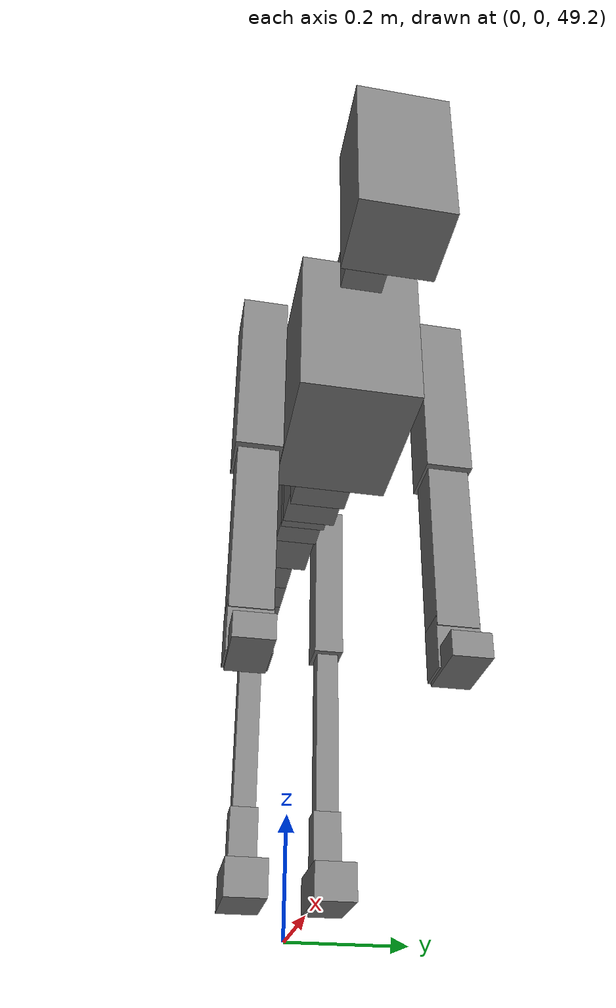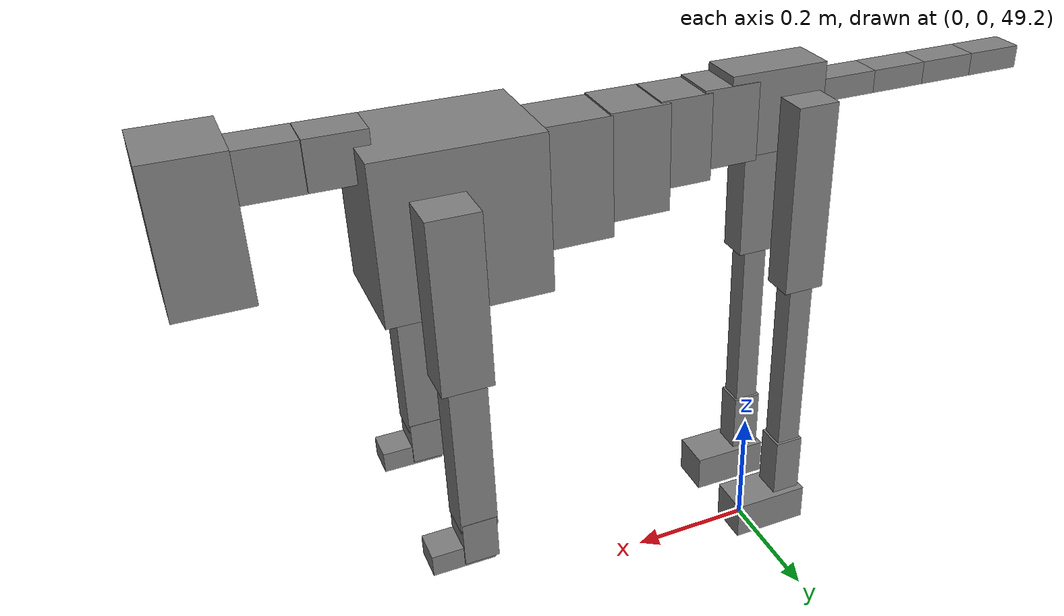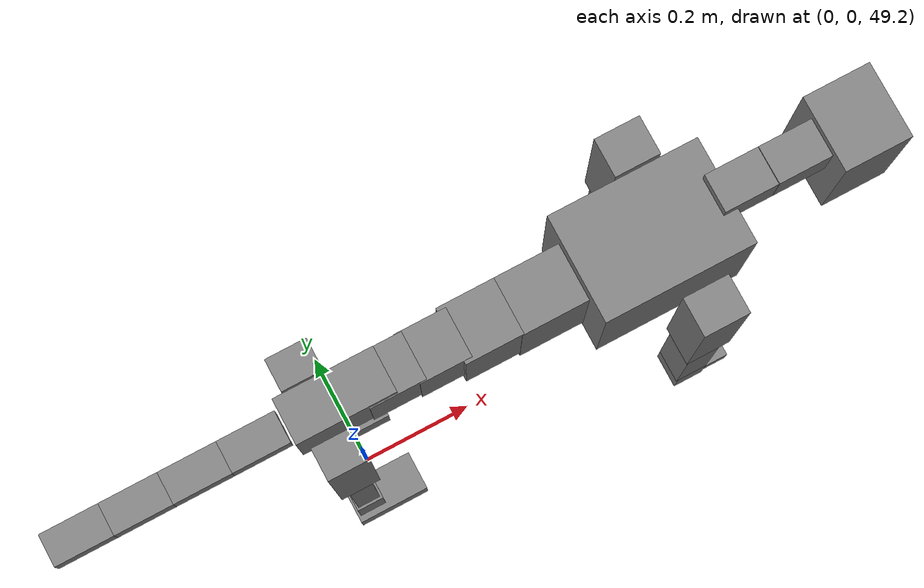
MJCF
<mujoco model="dog">

    <default>
        <joint armature="0.02" stiffness="1" damping="0.2" limited="true"/>
        <geom condim="3" friction="1 0.05 0.05" margin="0.01"/>
        <motor ctrllimited="true" ctrlrange="-1.0 1.0" forcelimited="true" gear="50"/>
    </default>

    <compiler inertiafromgeom="true" angle="radian"/>

    <option timestep="0.016" iterations="50" tolerance="1e-10" solver="Newton" jacobian="dense" cone="pyramidal"/>

    <size nconmax="20000" njmax="60000" nstack="5000000"/>
    <visual>
        <map force="0.1" zfar="30"/>
        <rgba haze="0.15 0.25 0.35 1"/>
        <quality shadowsize="2048"/>
        <global offwidth="800" offheight="800"/>
    </visual>

    <asset>
        <texture type="skybox" builtin="gradient" rgb1="0.3 0.5 0.7" rgb2="0 0 0" width="512" height="512"/>
        <texture name="texplane" type="2d" builtin="checker" rgb1=".2 .3 .4" rgb2=".1 0.15 0.2" width="512" height="512"
                 mark="cross" markrgb=".8 .8 .8"/>
        <texture name="texgeom" type="cube" builtin="flat" mark="cross" width="127" height="1278" rgb1="0.8 0.6 0.4"
                 rgb2="0.8 0.6 0.4" markrgb="1 1 1" random="0.01"/>

        <material name="matplane" reflectance="0.3" texture="texplane" texrepeat="1 1" texuniform="true"/>
        <material name="matgeom" texture="texgeom" texuniform="true" rgba="0.8 0.6 .4 1"/>
    </asset>

    <worldbody>
        <geom name="floor" pos="0 0 0" size="0 0 .25" type="plane" material="matplane" condim="3"/>

        <light directional="false" diffuse=".2 .2 .2" specular="0 0 0" pos="0 0 5" dir="0 0 -1" castshadow="false"/>
        <light mode="targetbodycom" target="torso" directional="false" diffuse=".8 .8 .8" specular="0.3 0.3 0.3"
               pos="0 0 4.0" dir="0 0 -1"/>

        <body name="root" pos="0 0 50">
            <freejoint name="root_1"/>
            <geom type="box" pos="0 0 -0.02" size="0.0774  0.0358  0.063" density="2030"/>

            <body name="spine1" pos="0.054 0 0">
                <joint name="spine1_y" axis="0 1 0" range="0 0.7" limited="true"/>
                <geom type="box" pos="0.02375 0 -0.03" size="0.04375  0.0375  0.05985" density="2030"/>

                <body name="spine2" pos="0.0612 0 0">
                    <joint name="spine2_y" axis="0 1 0" range="-0.15 0.15" limited="true"/>
                    <geom type="box" pos="0.03555  0  -0.04" size="0.04055  0.039  0.06615" density="2030"/>

                    <body name="spine3" pos="0.0730 0 0">
                        <joint name="spine3_y" axis="0 1 0" range="-0.15 0.15" limited="true"/>
                        <geom type="box" pos="0.03555  0  -0.057" size="0.04555  0.0445  0.081" density="2030"/>

                        <body name="spine4" pos="0.0780 0 0">
                            <joint name="spine4_y" axis="0 1 0" range="-0.15 0.15" limited="true"/>
                            <geom type="box" pos="0.05265  0  -0.07" size="0.05265  0.045  0.09135" density="2030"/>

                            <body name="torso" pos="0.1082 0 0">
                                <joint name="torso_y" axis="0 1 0" range="-0.15 0.15" limited="true"/>
                                <geom type="box" pos="0.11925  0  -0.085" size="0.11925  0.085  0.11745"
                                      density="2030"/>

                                <body name="neck1" pos="0.2160  0   0.0180">
                                    <joint name="neck1_y" axis="0 1 0" range="-1.2  -1" limited="true"/>
                                    <geom type="box" pos="0.0423  0  0" size="0.0423  0.03  0.036" density="2325"/>

                                    <body name="neck2" pos="0.0853  0  0">
                                        <joint name="neck2_y" axis="0 1 0" range="0.1  0" limited="true"/>
                                        <geom type="box" pos="0.0423  0  0" size="0.0423  0.03  0.036" density="2325"/>

                                        <body name="head" pos="0.0853  0  0">
                                            <joint name="head_y" axis="0 1 0" range="-0.3  -0.2" limited="true"/>
                                            <geom type="box" pos="0.0531  0  -0.055" size="0.0531  0.06  0.1044"
                                                  density="4030"/>

                                        </body>
                                    </body>
                                </body>

                                <body name="front_shoulder" pos="0.156  0   -0.0480">
                                    <joint name="front_shoulder_y" axis="0 1 0" range="-1 1.5" limited="true"/>
                                    <geom type="box" pos="0 0.13 -0.1013" size="0.0369  0.0315  0.1279" density="1158"/>
                                    <geom type="box" pos="0 -0.13 -0.1013" size="0.0369  0.0315  0.1279"
                                          density="1158"/>

                                    <body name="front_elbow" pos="0  0  -0.2025">
                                        <joint name="front_elbow_y" axis="0 1 0" range="-2 0" limited="true"/>
                                        <geom type="box" pos="0 0.13 -0.1329" size="0.0272  0.0278  0.1329"
                                              density="1081"/>
                                        <geom type="box" pos="0 -0.13 -0.1329" size="0.0272  0.0278  0.1329"
                                              density="1081"/>

                                        <body name="front_wrist" pos="0  0  -0.2659">
                                            <joint name="front_wrist_y" axis="0 1 0" range="-0.2 0" limited="true"/>
                                            <geom type="box" pos="0 0.13 -0.0220" size="0.0256  0.0285  0.0352"
                                                  density="1664"/>
                                            <geom type="box" pos="0 -0.13 -0.0220" size="0.0256  0.0285  0.0352"
                                                  density="1664"/>

                                            <body name="front_finger_end" pos="0  0  -0.0440">
                                                <joint name="front_finger_y" axis="0 1 0" range="-0.4 1"
                                                       limited="true"/>
                                                <geom type="box" pos="0.0256  0.13  -0.0018"
                                                      size="0.0470  0.0256  0.0168" density="1515"/>
                                                <geom type="box" pos="0.0256  -0.13  -0.0018"
                                                      size="0.0470  0.0256  0.0168" density="1515"/>

                                            </body>

                                        </body>
                                    </body>
                                </body>

                            </body>
                        </body>
                    </body>
                </body>
            </body>

            <body name="back_hip" pos="-0.03 0 -0.018">
                <joint name="back_hip_y" axis="0 1 0" range="-1.5 0.3" limited="true"/>
                <geom type="box" pos="0 0.07 -0.1274" size="0.0326  0.0256  0.1502" density="1154"/>
                <geom type="box" pos="0 -0.07 -0.1274" size="0.0326  0.0256  0.1502" density="1154"/>

                <body name="back_knee" pos="0  0  -0.2548">
                    <joint name="back_knee_y" axis="0 1 0" range="0 2.8" limited="true"/>
                    <geom type="box" pos="0 0.07 -0.1631" size="0.0196  0.0193  0.1786" density="1227"/>
                    <geom type="box" pos="0 -0.07 -0.1631" size="0.0196  0.0193  0.1786" density="1227"/>

                    <body name="back_ankle" pos="0  0  -0.3262">
                        <joint name="back_ankle_y" axis="0 1 0" range="-2.2 0" limited="true"/>
                        <geom type="box" pos="0 0.07 -0.0523" size="0.0235  0.0235  0.0635" density="1284"/>
                        <geom type="box" pos="0 -0.07 -0.0523" size="0.0235  0.0235  0.0635" density="1284"/>

                        <body name="back_toe_end" pos="0  0  -0.1045">
                            <joint name="back_toe_y" axis="0 1 0" range="-0.4 1" limited="true"/>
                            <geom type="box" pos="0.0342  0.07  -0.0156" size="0.0628  0.0342  0.0306" density="1515"/>
                            <geom type="box" pos="0.0342  -0.07  -0.0156" size="0.0628  0.0342  0.0306" density="1515"/>

                        </body>
                    </body>
                </body>
            </body>

            <body name="tail1" pos="-0.074 0 -0.006">
                <joint name="tail1_y" axis="0 1 0" range="-0.2 0.2" limited="true"/>
                <geom type="box" pos="-0.0536  0  0" size="0.045  0.025  0.0175" density="1587"/>

                <body name="tail2" pos="-0.09 0 0">
                    <joint name="tail2_y" axis="0 1 0" range="-0.2 0.2" limited="true"/>
                    <geom type="box" pos="-0.0536  0  0" size="0.045  0.025  0.0175" density="1587"/>

                    <body name="tail3" pos="-0.09 0 0">
                        <joint name="tail3_y" axis="0 1 0" range="-0.2 0.2" limited="true"/>
                        <geom type="box" pos="-0.0536  0  0" size="0.045  0.025  0.0175" density="1587"/>

                        <body name="tail4" pos="-0.09 0 0">
                            <joint name="tail4_y" axis="0 1 0" range="-0.2 0.2" limited="true"/>
                            <geom type="box" pos="-0.0536  0  0" size="0.045  0.025  0.0175" density="1587"/>

                        </body>
                    </body>
                </body>
            </body>
        </body>
    </worldbody>

    <actuator>
        <motor joint="spine1_y" forcerange="-150 150     "/>
        <motor joint="spine2_y" forcerange="-150 150     "/>
        <motor joint="spine3_y" forcerange="-150 150     "/>
        <motor joint="spine4_y" forcerange="-150 150     "/>
        <motor joint="torso_y" forcerange="-150 150     "/>
        <motor joint="neck1_y" forcerange="-100 100       "/>
        <motor joint="neck2_y" forcerange="-100 100       "/>
        <motor joint="head_y" forcerange="-150 150       "/>
        <motor joint="front_shoulder_y" forcerange="-194.32 116.01"/>
        <motor joint="front_elbow_y" forcerange="-104.16 198.25"/>
        <motor joint="front_wrist_y" forcerange="-97.83 129.98"/>
        <motor joint="front_finger_y" forcerange="-62.51 34.24"/>
        <motor joint="back_hip_y" forcerange="-227.91 313.43"/>
        <motor joint="back_knee_y" forcerange="-250.88 230.55"/>
        <motor joint="back_angle_y" forcerange="-213.74 61.58"/>
        <motor joint="back_toe_y" forcerange="-89.02 104.80"/>
        <motor joint="tail1_y" forcerange="-50 50     "/>
        <motor joint="tail2_y" forcerange="-50 50     "/>
        <motor joint="tail3_y" forcerange="-50 50     "/>
        <motor joint="tail4_y" forcerange="-50 50     "/>
    </actuator>
</mujoco>
